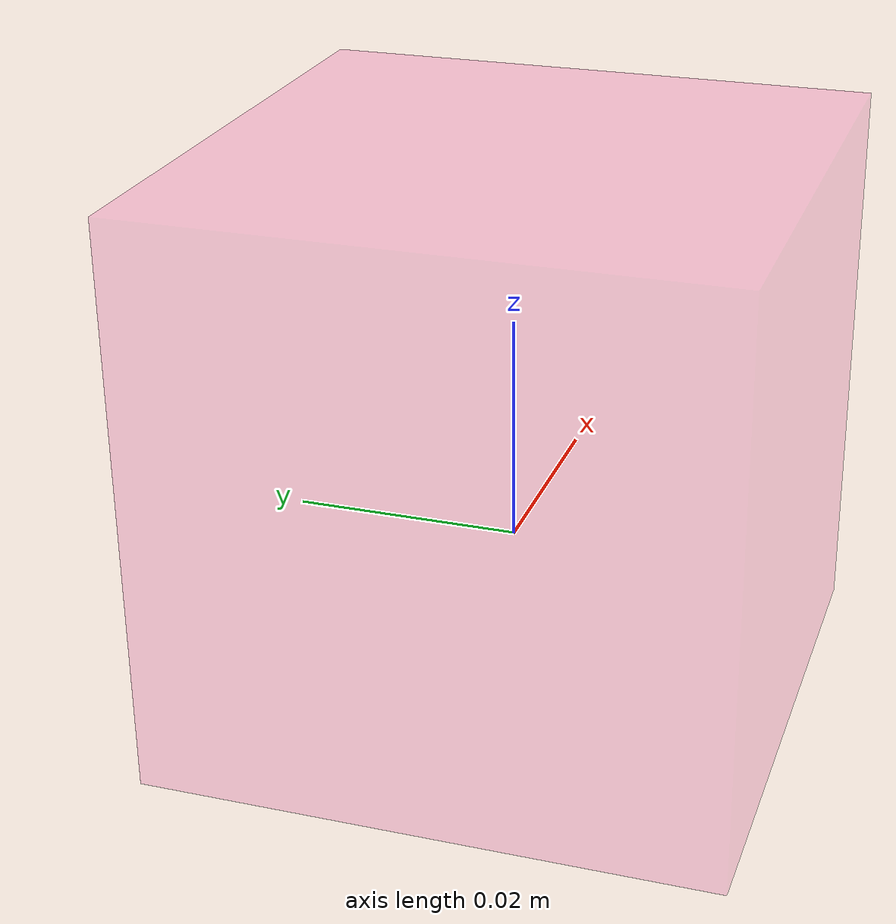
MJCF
<mujoco>
    <worldbody>
        <body name="dummy" pos="0.0 0.0 0.0" quat="1.0 0.0 0.0 0.0">
            <geom type="box" name="dummy" pos="0 0 0.01" size="0.025 0.025 0.025" rgba="1 0.078 0.576 0.1" conaffinity="0" contype="0"/>
            <joint name="dummy_joint" type="free"/>
            <inertial pos="0 0 0" mass="0.005" diaginertia="0.002 0.002 0.002" />
        </body>
    </worldbody>
</mujoco>
